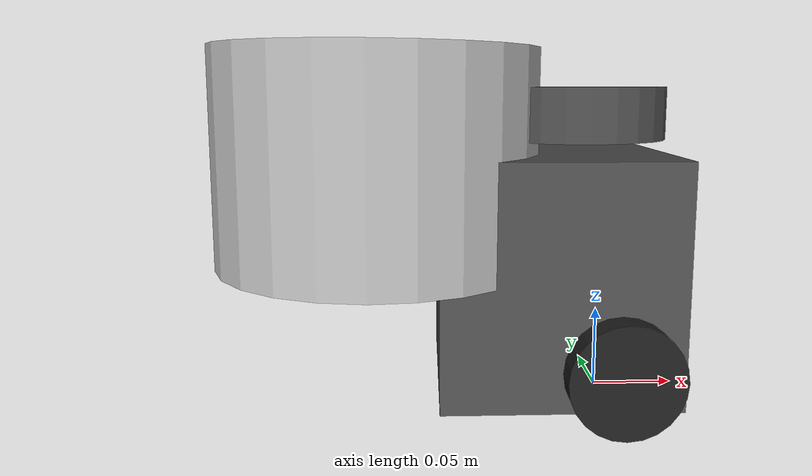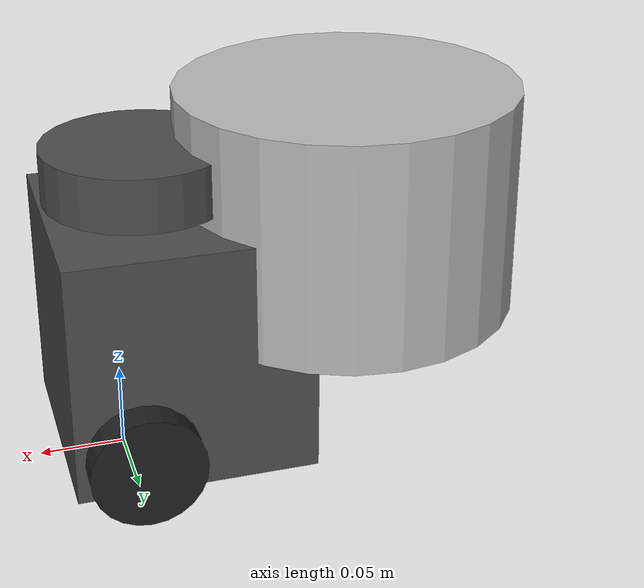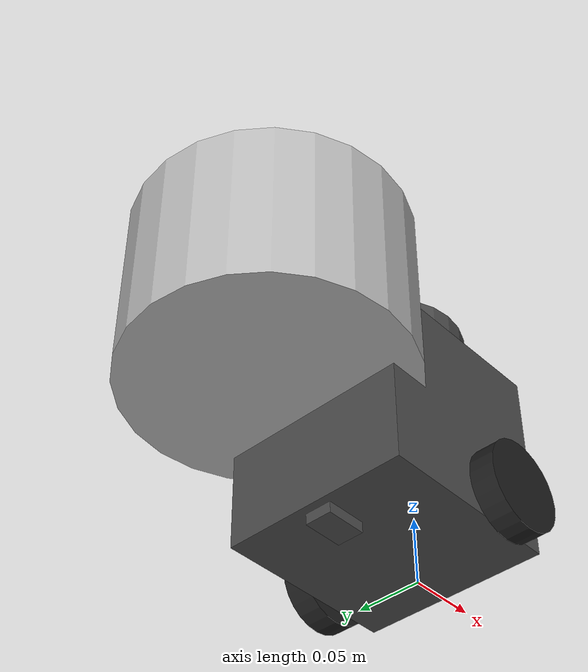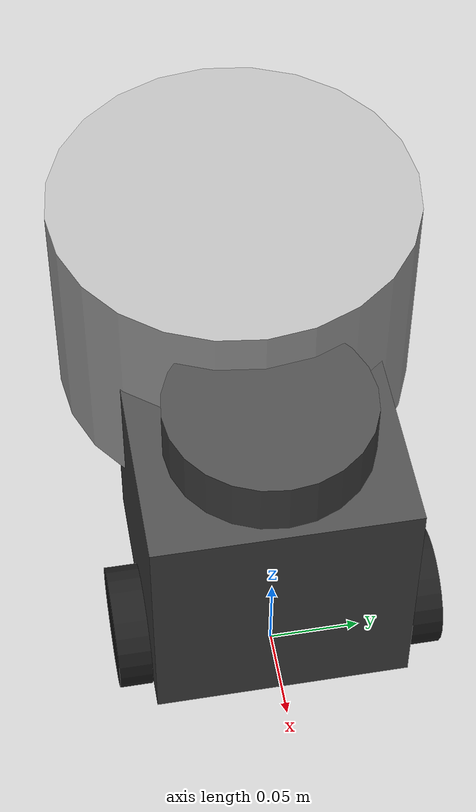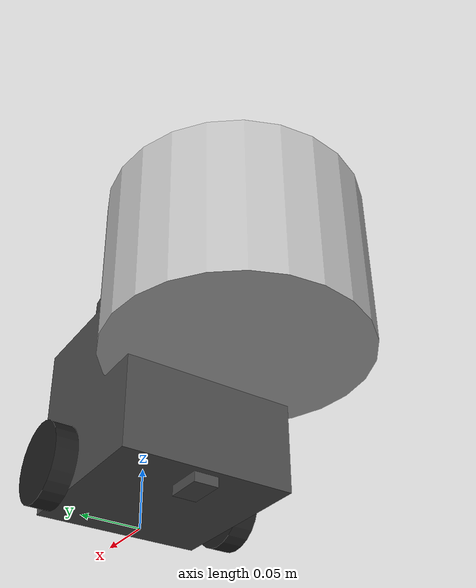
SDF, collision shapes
<?xml version='1.0'?>
<sdf version='1.6'>
  <model name='turtlebot3_burger'>
    <link name='base_footprint'>
      <pose frame=''>0 0 0 0 -0 0</pose>
      <inertial>
        <pose frame=''>-0.00429 0 0.030734 0 -0 0</pose>
        <mass>0.944735</mass>
        <inertia>
          <ixx>0.00717896</ixx>
          <ixy>-1.22941e-05</ixy>
          <ixz>0.00057674</ixz>
          <iyy>0.00721804</iyy>
          <iyz>-5.01209e-06</iyz>
          <izz>0.00413858</izz>
        </inertia>
      </inertial>
      <velocity_decay/>
      <velocity_decay/>
      <velocity_decay/>
      <sensor name='imu' type='imu'>
        <always_on>1</always_on>
        <visualize>0</visualize>
        <pose frame=''>-0.032 0 0.078 0 -0 0</pose>
        <imu/>
      </sensor>
      <gravity>1</gravity>
      <velocity_decay/>
      <sensor name='lds_lfcd_sensor' type='ray'>
        <visualize>0</visualize>
        <update_rate>5</update_rate>
        <ray>
          <scan>
            <horizontal>
              <samples>360</samples>
              <resolution>1</resolution>
              <min_angle>0</min_angle>
              <max_angle>6.28319</max_angle>
            </horizontal>
            <vertical>
              <samples>1</samples>
              <min_angle>0</min_angle>
              <max_angle>0</max_angle>
            </vertical>
          </scan>
          <range>
            <min>0.12</min>
            <max>3.5</max>
            <resolution>0.015</resolution>
          </range>
          <noise>
            <type>gaussian</type>
            <mean>0</mean>
            <stddev>0.01</stddev>
          </noise>
        </ray>
        <plugin name='gazebo_ros_lds_lfcd_controller' filename='libgazebo_ros_laser.so'>
          <topicName>scan</topicName>
          <frameName>base_scan</frameName>
          <robotNamespace>/</robotNamespace>
        </plugin>
        <pose frame=''>-0.032 0 0.182 0 -0 0</pose>
      </sensor>
      <self_collide>0</self_collide>
      <enable_wind>0</enable_wind>
      <kinematic>0</kinematic>
      <visual name='base_footprint_fixed_joint_lump__base_link_visual'>
        <pose frame=''>-0.032 0 0.01 0 -0 0</pose>
        <geometry>
          <mesh>
            <scale>0.001 0.001 0.001</scale>
            <uri>/home/rachael/catkin_ws/src/turtlebot3/turtlebot3_description/meshes/bases/burger_base.stl</uri>
          </mesh>
        </geometry>
        <material>
          <script>
            <name>Gazebo/DarkGrey</name>
            <uri>file://media/materials/scripts/gazebo.material</uri>
          </script>
          <emissive>0 0 0 1</emissive>
        </material>
        <transparency>0</transparency>
        <cast_shadows>1</cast_shadows>
      </visual>
      <visual name='base_footprint_fixed_joint_lump__base_scan_visual_1'>
        <pose frame=''>-0.032 0 0.182 0 -0 0</pose>
        <geometry>
          <mesh>
            <scale>0.001 0.001 0.001</scale>
            <uri>/home/rachael/catkin_ws/src/turtlebot3/turtlebot3_description/meshes/sensors/lds.stl</uri>
          </mesh>
        </geometry>
        <material>
          <script>
            <name>Gazebo/FlatBlack</name>
            <uri>file://media/materials/scripts/gazebo.material</uri>
          </script>
          <emissive>0 0 0 1</emissive>
        </material>
        <transparency>0</transparency>
        <cast_shadows>1</cast_shadows>
      </visual>
      <collision name='base_footprint_fixed_joint_lump__base_link_collision'>
        <laser_retro>0</laser_retro>
        <max_contacts>10</max_contacts>
        <pose frame=''>-0.032 0 0.08 0 -0 0</pose>
        <geometry>
          <box>
            <size>0.14 0.14 0.143</size>
          </box>
        </geometry>
        <surface>
          <friction>
            <ode>
              <mu>1</mu>
              <mu2>1</mu2>
              <fdir1>0 0 0</fdir1>
              <slip1>0</slip1>
              <slip2>0</slip2>
            </ode>
            <torsional>
              <coefficient>1</coefficient>
              <patch_radius>0</patch_radius>
              <surface_radius>0</surface_radius>
              <use_patch_radius>1</use_patch_radius>
              <ode>
                <slip>0</slip>
              </ode>
            </torsional>
          </friction>
          <bounce>
            <restitution_coefficient>0</restitution_coefficient>
            <threshold>1e+06</threshold>
          </bounce>
          <contact>
            <collide_without_contact>0</collide_without_contact>
            <collide_without_contact_bitmask>1</collide_without_contact_bitmask>
            <collide_bitmask>1</collide_bitmask>
            <ode>
              <soft_cfm>0</soft_cfm>
              <soft_erp>0.2</soft_erp>
              <kp>1e+13</kp>
              <kd>1</kd>
              <max_vel>0.01</max_vel>
              <min_depth>0</min_depth>
            </ode>
            <bullet>
              <split_impulse>1</split_impulse>
              <split_impulse_penetration_threshold>-0.01</split_impulse_penetration_threshold>
              <soft_cfm>0</soft_cfm>
              <soft_erp>0.2</soft_erp>
              <kp>1e+13</kp>
              <kd>1</kd>
            </bullet>
          </contact>
        </surface>
      </collision>
      <collision name='base_footprint_fixed_joint_lump__caster_back_link_collision_1'>
        <laser_retro>0</laser_retro>
        <max_contacts>10</max_contacts>
        <pose frame=''>-0.081 1e-06 0.005 -1.57 0 0</pose>
        <geometry>
          <box>
            <size>0.03 0.009 0.02</size>
          </box>
        </geometry>
        <surface>
          <friction>
            <ode>
              <mu>0.1</mu>
              <mu2>0.1</mu2>
              <fdir1>0 0 0</fdir1>
              <slip1>0</slip1>
              <slip2>0</slip2>
            </ode>
            <torsional>
              <coefficient>1</coefficient>
              <patch_radius>0</patch_radius>
              <surface_radius>0</surface_radius>
              <use_patch_radius>1</use_patch_radius>
              <ode>
                <slip>0</slip>
              </ode>
            </torsional>
          </friction>
          <bounce>
            <restitution_coefficient>0</restitution_coefficient>
            <threshold>1e+06</threshold>
          </bounce>
          <contact>
            <collide_without_contact>0</collide_without_contact>
            <collide_without_contact_bitmask>1</collide_without_contact_bitmask>
            <collide_bitmask>1</collide_bitmask>
            <ode>
              <soft_cfm>0</soft_cfm>
              <soft_erp>0.2</soft_erp>
              <kp>1e+06</kp>
              <kd>100</kd>
              <max_vel>1</max_vel>
              <min_depth>0.001</min_depth>
            </ode>
            <bullet>
              <split_impulse>1</split_impulse>
              <split_impulse_penetration_threshold>-0.01</split_impulse_penetration_threshold>
              <soft_cfm>0</soft_cfm>
              <soft_erp>0.2</soft_erp>
              <kp>1e+06</kp>
              <kd>100</kd>
            </bullet>
          </contact>
        </surface>
      </collision>
      <collision name='base_footprint_fixed_joint_lump__base_scan_collision_2'>
        <laser_retro>0</laser_retro>
        <max_contacts>10</max_contacts>
        <pose frame=''>-0.017 0 0.1755 0 -0 0</pose>
        <geometry>
          <cylinder>
            <radius>0.055</radius>
            <length>0.0315</length>
          </cylinder>
        </geometry>
        <surface>
          <friction>
            <ode>
              <mu>1</mu>
              <mu2>1</mu2>
              <fdir1>0 0 0</fdir1>
              <slip1>0</slip1>
              <slip2>0</slip2>
            </ode>
            <torsional>
              <coefficient>1</coefficient>
              <patch_radius>0</patch_radius>
              <surface_radius>0</surface_radius>
              <use_patch_radius>1</use_patch_radius>
              <ode>
                <slip>0</slip>
              </ode>
            </torsional>
          </friction>
          <bounce>
            <restitution_coefficient>0</restitution_coefficient>
            <threshold>1e+06</threshold>
          </bounce>
          <contact>
            <collide_without_contact>0</collide_without_contact>
            <collide_without_contact_bitmask>1</collide_without_contact_bitmask>
            <collide_bitmask>1</collide_bitmask>
            <ode>
              <soft_cfm>0</soft_cfm>
              <soft_erp>0.2</soft_erp>
              <kp>1e+13</kp>
              <kd>1</kd>
              <max_vel>0.01</max_vel>
              <min_depth>0</min_depth>
            </ode>
            <bullet>
              <split_impulse>1</split_impulse>
              <split_impulse_penetration_threshold>-0.01</split_impulse_penetration_threshold>
              <soft_cfm>0</soft_cfm>
              <soft_erp>0.2</soft_erp>
              <kp>1e+13</kp>
              <kd>1</kd>
            </bullet>
          </contact>
        </surface>
      </collision>
    </link>
    <link name='link_0'>
      <inertial>
        <mass>0.00299181</mass>
        <inertia>
          <ixx>8.63e-06</ixx>
          <ixy>0</ixy>
          <ixz>0</ixz>
          <iyy>8.63e-06</iyy>
          <iyz>0</iyz>
          <izz>8.39e-06</izz>
        </inertia>
        <pose frame=''>0 0 0 0 -0 0</pose>
      </inertial>
      <pose frame=''>-0.138878 0.002256 0.148275 2e-05 -0.007706 3.14</pose>
      <gravity>1</gravity>
      <self_collide>0</self_collide>
      <kinematic>0</kinematic>
      <enable_wind>0</enable_wind>
      <visual name='visual'>
        <pose frame=''>0 0 0 0 -0 0</pose>
        <geometry>
	<mesh>
	     <uri>model://turtlebot3_burger/meshes/cubemesh.dae</uri>
             <scale>0.1 0.1 0.1</scale>
	</mesh>
        </geometry>
        <material>
          <lighting>1</lighting>
          <script>
            <uri>model://turtlebot3_burger/materials/scripts</uri>
	    <uri>model://turtlebot3_burger/materials/textures</uri>
            <name>cubemark/Diffuse</name>
          </script>
        </material>
        <transparency>0</transparency>
        <cast_shadows>1</cast_shadows>
      </visual>
      <collision name='collision'>
        <laser_retro>0</laser_retro>
        <max_contacts>10</max_contacts>
        <pose frame=''>0 0 0 0 -0 0</pose>
        <geometry>
          <cylinder>
            <radius>0.1</radius>
            <length>0.13338</length>
          </cylinder>
        </geometry>
        <surface>
          <friction>
            <ode>
              <mu>1</mu>
              <mu2>1</mu2>
              <fdir1>0 0 0</fdir1>
              <slip1>0</slip1>
              <slip2>0</slip2>
            </ode>
            <torsional>
              <coefficient>1</coefficient>
              <patch_radius>0</patch_radius>
              <surface_radius>0</surface_radius>
              <use_patch_radius>1</use_patch_radius>
              <ode>
                <slip>0</slip>
              </ode>
            </torsional>
          </friction>
          <bounce>
            <restitution_coefficient>0</restitution_coefficient>
            <threshold>1e+06</threshold>
          </bounce>
          <contact>
            <collide_without_contact>0</collide_without_contact>
            <collide_without_contact_bitmask>1</collide_without_contact_bitmask>
            <collide_bitmask>1</collide_bitmask>
            <ode>
              <soft_cfm>0</soft_cfm>
              <soft_erp>0.2</soft_erp>
              <kp>1e+13</kp>
              <kd>1</kd>
              <max_vel>0.01</max_vel>
              <min_depth>0</min_depth>
            </ode>
            <bullet>
              <split_impulse>1</split_impulse>
              <split_impulse_penetration_threshold>-0.01</split_impulse_penetration_threshold>
              <soft_cfm>0</soft_cfm>
              <soft_erp>0.2</soft_erp>
              <kp>1e+13</kp>
              <kd>1</kd>
            </bullet>
          </contact>
        </surface>
      </collision>
    </link>
    <link name='wheel_left_link'>
      <pose frame=''>0 0.08 0.033 -1.57 -0 -0</pose>
      <inertial>
        <pose frame=''>0 0 0 0 -0 0</pose>
        <mass>0.0284989</mass>
        <inertia>
          <ixx>1.11756e-05</ixx>
          <ixy>-4.23698e-11</ixy>
          <ixz>-5.93817e-09</ixz>
          <iyy>1.11924e-05</iyy>
          <iyz>-1.44001e-11</iyz>
          <izz>2.07126e-05</izz>
        </inertia>
      </inertial>
      <gravity>1</gravity>
      <velocity_decay/>
      <self_collide>0</self_collide>
      <enable_wind>0</enable_wind>
      <kinematic>0</kinematic>
      <visual name='wheel_left_link_visual'>
        <pose frame=''>0 0 0 1.57 -0 0</pose>
        <geometry>
          <mesh>
            <scale>0.001 0.001 0.001</scale>
            <uri>/home/rachael/catkin_ws/src/turtlebot3/turtlebot3_description/meshes/wheels/left_tire.stl</uri>
          </mesh>
        </geometry>
        <material>
          <script>
            <name>Gazebo/FlatBlack</name>
            <uri>file://media/materials/scripts/gazebo.material</uri>
          </script>
        </material>
        <transparency>0</transparency>
        <cast_shadows>1</cast_shadows>
      </visual>
      <collision name='wheel_left_link_collision'>
        <laser_retro>0</laser_retro>
        <max_contacts>10</max_contacts>
        <pose frame=''>0 0 0 0 -0 0</pose>
        <geometry>
          <cylinder>
            <radius>0.033</radius>
            <length>0.018</length>
          </cylinder>
        </geometry>
        <surface>
          <friction>
            <ode>
              <mu>0.1</mu>
              <mu2>0.1</mu2>
              <fdir1>1 0 0</fdir1>
              <slip1>0</slip1>
              <slip2>0</slip2>
            </ode>
            <torsional>
              <coefficient>1</coefficient>
              <patch_radius>0</patch_radius>
              <surface_radius>0</surface_radius>
              <use_patch_radius>1</use_patch_radius>
              <ode>
                <slip>0</slip>
              </ode>
            </torsional>
          </friction>
          <bounce>
            <restitution_coefficient>0</restitution_coefficient>
            <threshold>1e+06</threshold>
          </bounce>
          <contact>
            <collide_without_contact>0</collide_without_contact>
            <collide_without_contact_bitmask>1</collide_without_contact_bitmask>
            <collide_bitmask>1</collide_bitmask>
            <ode>
              <soft_cfm>0</soft_cfm>
              <soft_erp>0.2</soft_erp>
              <kp>500000</kp>
              <kd>10</kd>
              <max_vel>0.1</max_vel>
              <min_depth>0.001</min_depth>
            </ode>
            <bullet>
              <split_impulse>1</split_impulse>
              <split_impulse_penetration_threshold>-0.01</split_impulse_penetration_threshold>
              <soft_cfm>0</soft_cfm>
              <soft_erp>0.2</soft_erp>
              <kp>500000</kp>
              <kd>10</kd>
            </bullet>
          </contact>
        </surface>
      </collision>
    </link>
    <link name='wheel_right_link'>
      <pose frame=''>-0 -0.08 0.033 -1.57 -0 -0</pose>
      <inertial>
        <pose frame=''>0 0 0 0 -0 0</pose>
        <mass>0.0284989</mass>
        <inertia>
          <ixx>1.11756e-05</ixx>
          <ixy>-4.23698e-11</ixy>
          <ixz>-5.93817e-09</ixz>
          <iyy>1.11924e-05</iyy>
          <iyz>-1.44001e-11</iyz>
          <izz>2.07126e-05</izz>
        </inertia>
      </inertial>
      <gravity>1</gravity>
      <velocity_decay/>
      <self_collide>0</self_collide>
      <enable_wind>0</enable_wind>
      <kinematic>0</kinematic>
      <visual name='wheel_right_link_visual'>
        <pose frame=''>0 0 0 1.57 -0 0</pose>
        <geometry>
          <mesh>
            <scale>0.001 0.001 0.001</scale>
            <uri>/home/rachael/catkin_ws/src/turtlebot3/turtlebot3_description/meshes/wheels/right_tire.stl</uri>
          </mesh>
        </geometry>
        <material>
          <script>
            <name>Gazebo/FlatBlack</name>
            <uri>file://media/materials/scripts/gazebo.material</uri>
          </script>
        </material>
        <transparency>0</transparency>
        <cast_shadows>1</cast_shadows>
      </visual>
      <collision name='wheel_right_link_collision'>
        <laser_retro>0</laser_retro>
        <max_contacts>10</max_contacts>
        <pose frame=''>0 0 0 0 -0 0</pose>
        <geometry>
          <cylinder>
            <radius>0.033</radius>
            <length>0.018</length>
          </cylinder>
        </geometry>
        <surface>
          <friction>
            <ode>
              <mu>0.1</mu>
              <mu2>0.1</mu2>
              <fdir1>1 0 0</fdir1>
              <slip1>0</slip1>
              <slip2>0</slip2>
            </ode>
            <torsional>
              <coefficient>1</coefficient>
              <patch_radius>0</patch_radius>
              <surface_radius>0</surface_radius>
              <use_patch_radius>1</use_patch_radius>
              <ode>
                <slip>0</slip>
              </ode>
            </torsional>
          </friction>
          <bounce>
            <restitution_coefficient>0</restitution_coefficient>
            <threshold>1e+06</threshold>
          </bounce>
          <contact>
            <collide_without_contact>0</collide_without_contact>
            <collide_without_contact_bitmask>1</collide_without_contact_bitmask>
            <collide_bitmask>1</collide_bitmask>
            <ode>
              <soft_cfm>0</soft_cfm>
              <soft_erp>0.2</soft_erp>
              <kp>500000</kp>
              <kd>10</kd>
              <max_vel>0.1</max_vel>
              <min_depth>0.001</min_depth>
            </ode>
            <bullet>
              <split_impulse>1</split_impulse>
              <split_impulse_penetration_threshold>-0.01</split_impulse_penetration_threshold>
              <soft_cfm>0</soft_cfm>
              <soft_erp>0.2</soft_erp>
              <kp>500000</kp>
              <kd>10</kd>
            </bullet>
          </contact>
        </surface>
      </collision>
    </link>
    <joint name='base_footprint_JOINT_0' type='fixed'>
      <parent>base_footprint</parent>
      <child>link_0</child>
      <pose frame=''>0 0 0 0 -0 0</pose>
      <physics>
        <ode>
          <limit>
            <cfm>0</cfm>
            <erp>0.2</erp>
          </limit>
          <suspension>
            <cfm>0</cfm>
            <erp>0.2</erp>
          </suspension>
        </ode>
      </physics>
    </joint>
    <joint name='wheel_left_joint' type='revolute'>
      <parent>base_footprint</parent>
      <child>wheel_left_link</child>
      <pose frame=''>0 0 0 0 -0 0</pose>
      <axis>
        <xyz>0 1 0.000796</xyz>
        <use_parent_model_frame>1</use_parent_model_frame>
        <limit>
          <lower>-1e+16</lower>
          <upper>1e+16</upper>
          <effort>-1</effort>
          <velocity>-1</velocity>
        </limit>
        <dynamics>
          <spring_reference>0</spring_reference>
          <spring_stiffness>0</spring_stiffness>
          <damping>0</damping>
          <friction>0</friction>
        </dynamics>
      </axis>
      <physics>
        <ode>
          <limit>
            <cfm>0</cfm>
            <erp>0.2</erp>
          </limit>
          <suspension>
            <cfm>0</cfm>
            <erp>0.2</erp>
          </suspension>
        </ode>
      </physics>
    </joint>
    <joint name='wheel_right_joint' type='revolute'>
      <parent>base_footprint</parent>
      <child>wheel_right_link</child>
      <pose frame=''>0 0 0 0 -0 0</pose>
      <axis>
        <xyz>0 1 0.000796</xyz>
        <use_parent_model_frame>1</use_parent_model_frame>
        <limit>
          <lower>-1e+16</lower>
          <upper>1e+16</upper>
          <effort>-1</effort>
          <velocity>-1</velocity>
        </limit>
        <dynamics>
          <spring_reference>0</spring_reference>
          <spring_stiffness>0</spring_stiffness>
          <damping>0</damping>
          <friction>0</friction>
        </dynamics>
      </axis>
      <physics>
        <ode>
          <limit>
            <cfm>0</cfm>
            <erp>0.2</erp>
          </limit>
          <suspension>
            <cfm>0</cfm>
            <erp>0.2</erp>
          </suspension>
        </ode>
      </physics>
    </joint>
    <static>0</static>
    <allow_auto_disable>1</allow_auto_disable>
    <plugin name='imu_plugin' filename='libgazebo_ros_imu.so'>
      <alwaysOn>1</alwaysOn>
      <topicName>imu</topicName>
      <serviceName>imu_service</serviceName>
      <gaussianNoise>0.0</gaussianNoise>
      <updateRate>200</updateRate>
      <imu>
        <noise>
          <type>gaussian</type>
          <rate>
            <mean>0.0</mean>
            <stddev>2e-4</stddev>
            <bias_mean>0.0000075</bias_mean>
            <bias_stddev>0.0000008</bias_stddev>
          </rate>
          <accel>
            <mean>0.0</mean>
            <stddev>1.7e-2</stddev>
            <bias_mean>0.1</bias_mean>
            <bias_stddev>0.001</bias_stddev>
          </accel>
        </noise>
      </imu>
      <robotNamespace>/</robotNamespace>
      <bodyName>base_footprint</bodyName>
      <frameName>base_footprint</frameName>
      <xyzOffset>0.064 0 -0.156</xyzOffset>
      <rpyOffset>0 -0 0</rpyOffset>
    </plugin>
    <plugin name='turtlebot3_burger_controller' filename='libgazebo_ros_diff_drive.so'>
      <commandTopic>cmd_vel</commandTopic>
      <odometryTopic>odom</odometryTopic>
      <odometryFrame>odom</odometryFrame>
      <odometrySource>world</odometrySource>
      <publishOdomTF>1</publishOdomTF>
      <robotBaseFrame>base_footprint</robotBaseFrame>
      <publishWheelTF>0</publishWheelTF>
      <publishTf>1</publishTf>
      <publishWheelJointState>1</publishWheelJointState>
      <legacyMode>0</legacyMode>
      <updateRate>30</updateRate>
      <leftJoint>wheel_left_joint</leftJoint>
      <rightJoint>wheel_right_joint</rightJoint>
      <wheelSeparation>0.160</wheelSeparation>
      <wheelDiameter>0.066</wheelDiameter>
      <wheelAcceleration>1</wheelAcceleration>
      <wheelTorque>10</wheelTorque>
      <rosDebugLevel>na</rosDebugLevel>
      <robotNamespace>/</robotNamespace>
    </plugin>
  </model>
</sdf>
